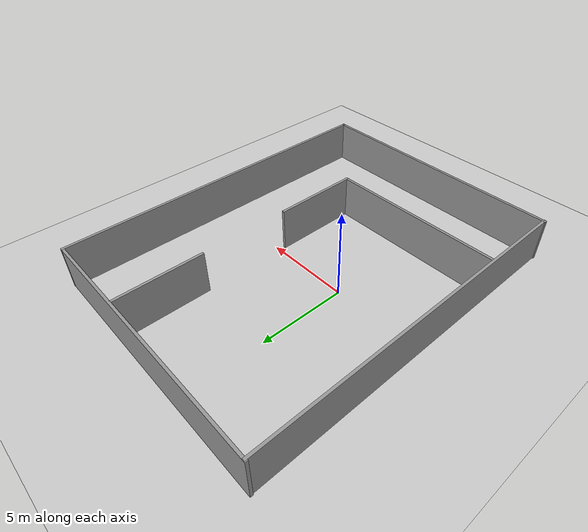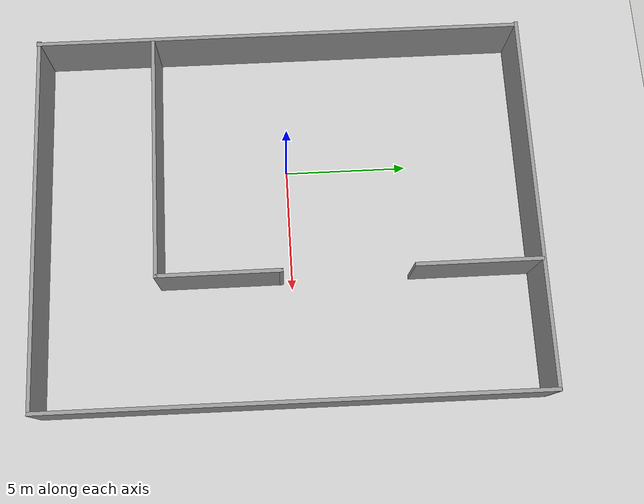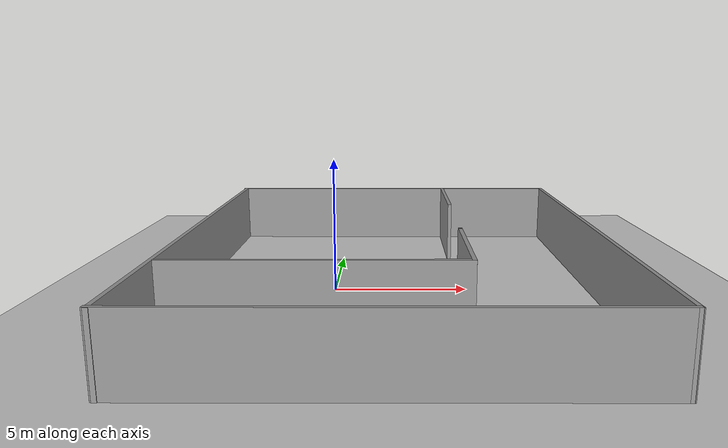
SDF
<sdf version="1.6">
 <world name="default">
  <light name="sun" type="directional">
   <pose>0 0 10 0 -0 0</pose>
   <diffuse>0.8 0.8 0.8 1</diffuse>
   <specular>0.2 0.2 0.2 1</specular>
   <attenuation>
    <range>1000</range>
    <constant>0.9</constant>
    <linear>0.01</linear>
    <quadratic>0.001</quadratic>
   </attenuation>
   <direction>-0.5 0.1 -0.9</direction>
  </light>
  <model name="ground_plane">
   <static>1</static>
   <link name="link">
    <collision name="collision">
     <geometry><plane><normal>0 0 1</normal><size>100 100</size></plane></geometry>
     <surface>
      <contact><collide_bitmask>65535</collide_bitmask></contact>
      <friction><ode><mu>100</mu><mu2>50</mu2></ode></friction>
     </surface>
    </collision>
    <visual name="visual">
     <cast_shadows>0</cast_shadows>
     <geometry><plane><normal>0 0 1</normal><size>100 100</size></plane></geometry>
     <material>
      <script><uri>file://media/materials/scripts/gazebo.material</uri><name>Gazebo/Grey</name></script>
     </material>
    </visual>
   </link>
  </model>
  <gravity>0 0 -9.8</gravity>
  <magnetic_field>6e-06 2.3e-05 -4.2e-05</magnetic_field>
  <atmosphere type="adiabatic"/>
  <physics name="default_physics" default="0" type="ode">
   <max_step_size>0.001</max_step_size>
   <real_time_factor>1</real_time_factor>
   <real_time_update_rate>1000</real_time_update_rate>
  </physics>
  <scene><ambient>0.4 0.4 0.4 1</ambient><background>0.7 0.7 0.7 1</background><shadows>1</shadows></scene>
  <audio><device>default</device></audio>
  <spherical_coordinates>
   <surface_model>EARTH_WGS84</surface_model>
   <latitude_deg>0</latitude_deg>
   <longitude_deg>0</longitude_deg>
   <elevation>0</elevation>
   <heading_deg>0</heading_deg>
  </spherical_coordinates>
  <model name="proj1">
   <pose>2.19578 -0.111876 0 0 -0 0</pose>
   <link name="Wall_0">
    <collision name="Wall_0_Collision">
     <geometry><box><size>19.9137 0.15 2.5</size></box></geometry>
     <pose>0 0 1.25 0 -0 0</pose>
    </collision>
    <visual name="Wall_0_Visual">
     <pose>0 0 1.25 0 -0 0</pose>
     <geometry><box><size>19.9137 0.15 2.5</size></box></geometry>
     <material>
      <script><uri>file://media/materials/scripts/gazebo.material</uri><name>Gazebo/Grey</name></script>
      <ambient>1 1 1 1</ambient>
     </material>
     <meta><layer>0</layer></meta>
    </visual>
    <pose>-7.46155 0.012801 0 0 -0 1.56832</pose>
   </link>
   <link name="Wall_1">
    <collision name="Wall_1_Collision">
     <geometry><box><size>15.1707 0.15 2.5</size></box></geometry>
     <pose>0 0 1.25 0 -0 0</pose>
    </collision>
    <visual name="Wall_1_Visual">
     <pose>0 0 1.25 0 -0 0</pose>
     <geometry><box><size>15.1707 0.15 2.5</size></box></geometry>
     <material>
      <script><uri>file://media/materials/scripts/gazebo.material</uri><name>Gazebo/Grey</name></script>
      <ambient>1 1 1 1</ambient>
     </material>
     <meta><layer>0</layer></meta>
    </visual>
    <pose>0.024442 9.88193 0 0 -0 -0.004933</pose>
   </link>
   <link name="Wall_10">
    <collision name="Wall_10_Collision">
     <geometry><box><size>0.15 0.15 2.5</size></box></geometry>
     <pose>0 0 1.25 0 -0 0</pose>
    </collision>
    <visual name="Wall_10_Visual">
     <pose>0 0 1.25 0 -0 0</pose>
     <geometry><box><size>0.15 0.15 2.5</size></box></geometry>
     <material>
      <script><uri>file://media/materials/scripts/gazebo.material</uri><name>Gazebo/Grey</name></script>
      <ambient>1 1 1 1</ambient>
     </material>
     <meta><layer>0</layer></meta>
    </visual>
    <pose>2.51072 -0.305114 0 0 -0 0</pose>
   </link>
   <link name="Wall_12">
    <collision name="Wall_12_Collision">
     <geometry><box><size>5 0.15 2.5</size></box></geometry>
     <pose>0 0 1.25 0 -0 0</pose>
    </collision>
    <visual name="Wall_12_Visual">
     <pose>0 0 1.25 0 -0 0</pose>
     <geometry><box><size>5 0.15 2.5</size></box></geometry>
     <material>
      <script><uri>file://media/materials/scripts/gazebo.material</uri><name>Gazebo/Grey</name></script>
      <ambient>1 1 1 1</ambient>
     </material>
     <meta><layer>0</layer></meta>
    </visual>
    <pose>2.52672 7.37889 0 0 -0 1.5708</pose>
   </link>
   <link name="Wall_4">
    <collision name="Wall_4_Collision">
     <geometry><box><size>19.9143 0.15 2.5</size></box></geometry>
     <pose>0 0 1.25 0 -0 0</pose>
    </collision>
    <visual name="Wall_4_Visual">
     <pose>0 0 1.25 0 -0 0</pose>
     <geometry><box><size>19.9143 0.15 2.5</size></box></geometry>
     <material>
      <script><uri>file://media/materials/scripts/gazebo.material</uri><name>Gazebo/Grey</name></script>
      <ambient>1 1 1 1</ambient>
     </material>
     <meta><layer>0</layer></meta>
    </visual>
    <pose>7.51028 -0.037018 0 0 -0 -1.57327</pose>
   </link>
   <link name="Wall_5">
    <collision name="Wall_5_Collision">
     <geometry><box><size>15.1464 0.15 2.5</size></box></geometry>
     <pose>0 0 1.25 0 -0 0</pose>
    </collision>
    <visual name="Wall_5_Visual">
     <pose>0 0 1.25 0 -0 0</pose>
     <geometry><box><size>15.1464 0.15 2.5</size></box></geometry>
     <material>
      <script><uri>file://media/materials/scripts/gazebo.material</uri><name>Gazebo/Grey</name></script>
      <ambient>1 1 1 1</ambient>
     </material>
     <meta><layer>0</layer></meta>
    </visual>
    <pose>-0.036622 -9.88179 0 0 -0 3.13664</pose>
   </link>
   <link name="Wall_8">
    <collision name="Wall_8_Collision">
     <geometry><box><size>10 0.15 2.5</size></box></geometry>
     <pose>0 0 1.25 0 -0 0</pose>
    </collision>
    <visual name="Wall_8_Visual">
     <pose>0 0 1.25 0 -0 0</pose>
     <geometry><box><size>10 0.15 2.5</size></box></geometry>
     <material>
      <script><uri>file://media/materials/scripts/gazebo.material</uri><name>Gazebo/Grey</name></script>
      <ambient>1 1 1 1</ambient>
     </material>
     <meta><layer>0</layer></meta>
    </visual>
    <pose>-2.41428 -5.15525 0 0 -0 2.8e-05</pose>
   </link>
   <link name="Wall_9">
    <collision name="Wall_9_Collision">
     <geometry><box><size>5 0.15 2.5</size></box></geometry>
     <pose>0 0 1.25 0 -0 0</pose>
    </collision>
    <visual name="Wall_9_Visual">
     <pose>0 0 1.25 0 -0 0</pose>
     <geometry><box><size>5 0.15 2.5</size></box></geometry>
     <material>
      <script><uri>file://media/materials/scripts/gazebo.material</uri><name>Gazebo/Grey</name></script>
      <ambient>1 1 1 1</ambient>
     </material>
     <meta><layer>0</layer></meta>
    </visual>
    <pose>2.51072 -2.73011 0 0 -0 1.5708</pose>
   </link>
   <static>1</static>
  </model>
 </world>
</sdf>
